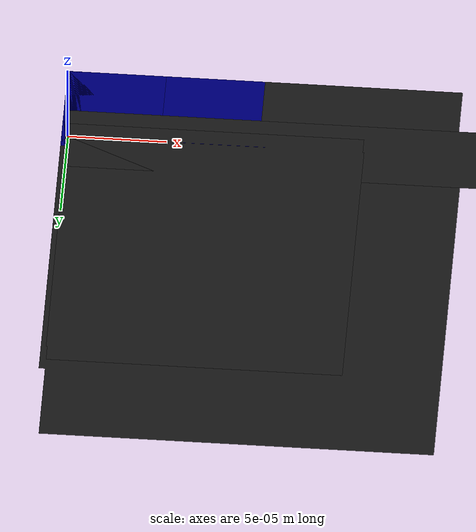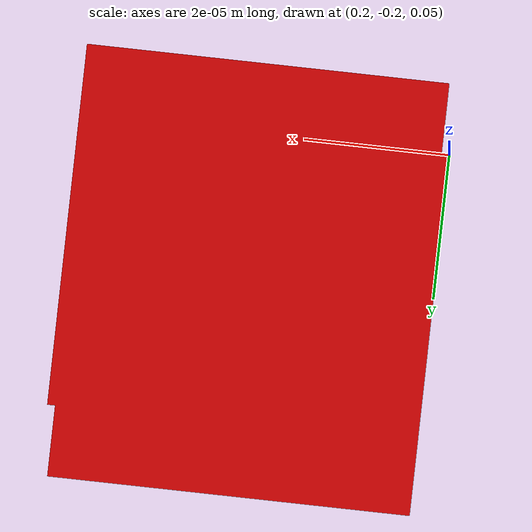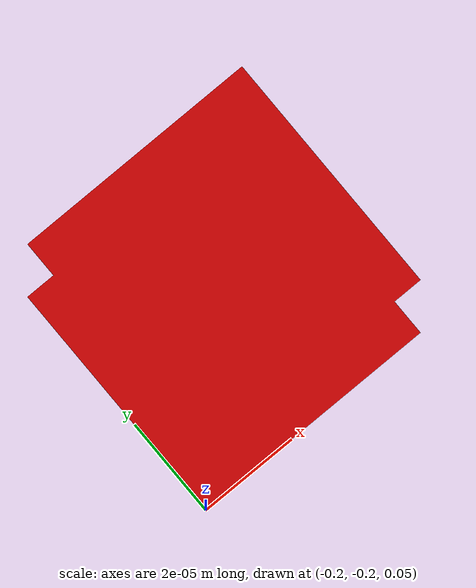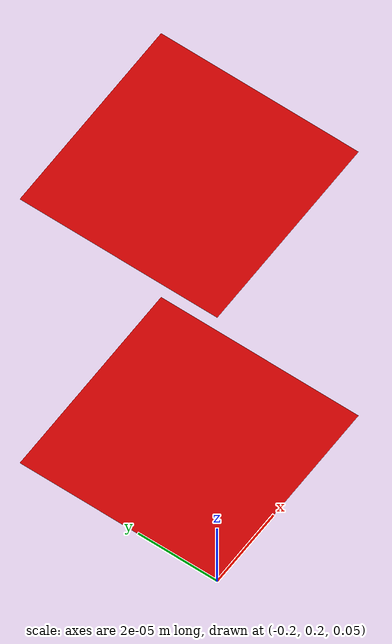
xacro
<?xml version="1.0"?>
<robot xmlns:xacro="http://www.ros.org/wiki/xacro" name="vectorsense_drone">

  <!-- Materials -->
  <material name="dark_grey"><color rgba="0.2 0.2 0.2 1.0"/></material>
  <material name="blue"><color rgba="0.0 0.0 0.8 1.0"/></material>
  <material name="red"><color rgba="0.8 0.0 0.0 1.0"/></material>

  <!-- base_link -->
  <link name="base_link">
    <visual>
      <geometry>
        <mesh filename="package://vectorsense_drone_sim/meshes/DroneFYDPBase.stl" scale="0.001 0.001 0.001"/>
      </geometry>
      <material name="dark_grey"/>
    </visual>
    <collision>
      <geometry>
        <mesh filename="package://vectorsense_drone_sim/meshes/DroneFYDPBase.stl" scale="0.001 0.001 0.001"/>
      </geometry>
    </collision>
    <inertial>
      <mass value="2.5"/>
      <inertia ixx="0.01" ixy="0" ixz="0" iyy="0.01" iyz="0" izz="0.02"/>
    </inertial>
  </link>

  <!-- Rigid Attachments -->
  <xacro:macro name="rigid_attachment" params="name mesh_file color">
    <link name="${name}">
      <visual>
        <geometry>
          <mesh filename="package://vectorsense_drone_sim/meshes/${mesh_file}" scale="0.001 0.001 0.001"/>
        </geometry>
        <material name="${color}"/>
      </visual>
      <collision>
        <geometry>
          <mesh filename="package://vectorsense_drone_sim/meshes/${mesh_file}" scale="0.001 0.001 0.001"/>
        </geometry>
      </collision>
      <inertial>
        <mass value="0.1"/>
        <inertia ixx="0.001" ixy="0" ixz="0" iyy="0.001" iyz="0" izz="0.001"/>
      </inertial>
    </link>
    <joint name="${name}_joint" type="fixed">
      <parent link="base_link"/>
      <child link="${name}"/>
      <origin xyz="0 0 0" rpy="0 0 0"/>
    </joint>
  </xacro:macro>

  <xacro:rigid_attachment name="xbeam" mesh_file="Xbeam.stl" color="dark_grey"/>
  <xacro:rigid_attachment name="beam_180" mesh_file="180beam.stl" color="dark_grey"/>
  <xacro:rigid_attachment name="beam_mechanism" mesh_file="beam_mechanism.stl" color="blue"/>
  <xacro:rigid_attachment name="mechanism_fix" mesh_file="mechanisam_fix.stl" color="blue"/>
  <xacro:rigid_attachment name="top_plate" mesh_file="top_plate.stl" color="dark_grey"/>

  <!-- Dynamic Motors -->
  <xacro:macro name="motor" params="name x y">
    <link name="motor_${name}">
      <visual>
        <geometry>
          <mesh filename="package://vectorsense_drone_sim/meshes/motor_attachment.stl" scale="0.001 0.001 0.001"/>
        </geometry>
        <material name="red"/>
      </visual>
      <inertial>
        <mass value="0.05"/>
        <inertia ixx="0.0001" ixy="0" ixz="0" iyy="0.0001" iyz="0" izz="0.0002"/>
      </inertial>
    </link>
    <joint name="motor_${name}_joint" type="continuous">
      <parent link="base_link"/>
      <child link="motor_${name}"/>
      <origin xyz="${x} ${y} 0.05" rpy="0 0 0"/>
      <axis xyz="0 0 1"/>
    </joint>
  </xacro:macro>

  <xacro:motor name="front_right" x="0.2" y="-0.2"/>
  <xacro:motor name="front_left" x="0.2" y="0.2"/>
  <xacro:motor name="back_right" x="-0.2" y="-0.2"/>
  <xacro:motor name="back_left" x="-0.2" y="0.2"/>

  <!-- Gazebo Plugins -->
  <gazebo>
    <plugin filename="gz-sim-multicopter-motor-model-system" name="gz::sim::systems::MulticopterMotorModel">
      <robotNamespace>vectorsense</robotNamespace>
      <jointName>motor_front_right_joint</jointName>
      <linkName>motor_front_right</linkName>
      <turningDirection>ccw</turningDirection>
      <timeConstantUp>0.0125</timeConstantUp>
      <timeConstantDown>0.025</timeConstantDown>
      <maxRotVelocity>800</maxRotVelocity>
      <motorConstant>8.54858e-06</motorConstant>
      <momentConstant>0.016</momentConstant>
      <commandSubTopic>command/motor_speed</commandSubTopic>
      <motorNumber>0</motorNumber>
      <rotorDragCoefficient>8.06428e-05</rotorDragCoefficient>
      <rollingMomentCoefficient>1e-06</rollingMomentCoefficient>
      <rotorVelocitySlowdownSim>10</rotorVelocitySlowdownSim>
    </plugin>
    <plugin filename="gz-sim-multicopter-velocity-control-system" name="gz::sim::systems::MulticopterVelocityControl">
      <robotNamespace>vectorsense</robotNamespace>
      <commandSubTopic>cmd_vel</commandSubTopic>
      <enableAngleControl>true</enableAngleControl>
      <enableVelocityControl>true</enableVelocityControl>
      <maximumLinearVelocity>10.0</maximumLinearVelocity>
      <maximumAngularVelocity>5.0</maximumAngularVelocity>
    </plugin>
  </gazebo>

</robot>
